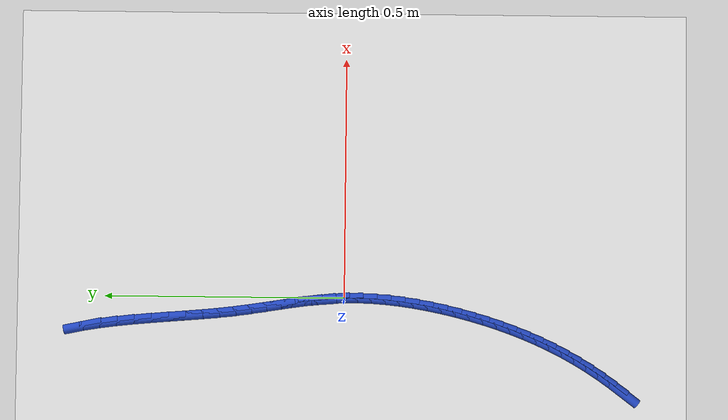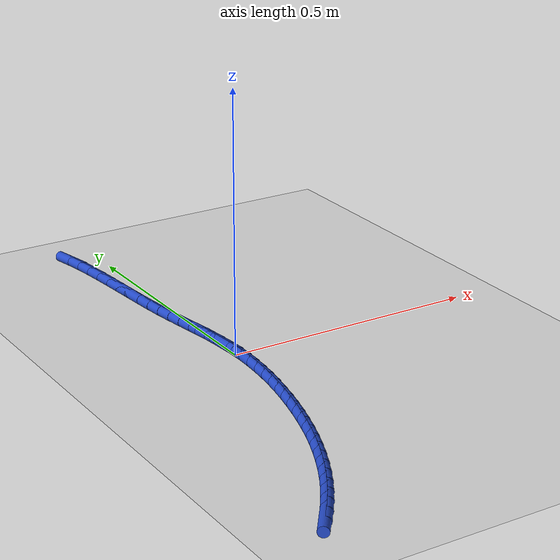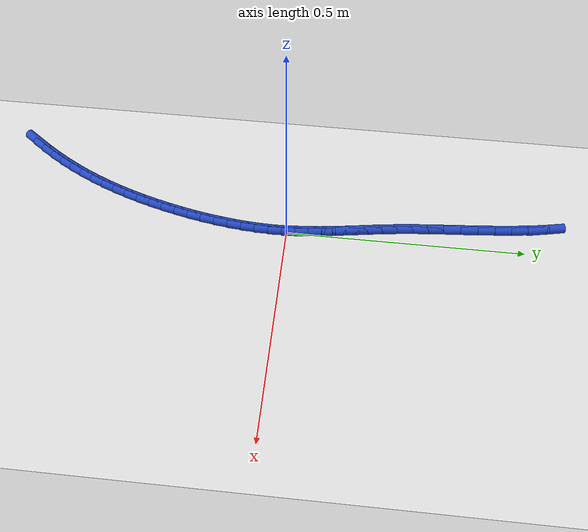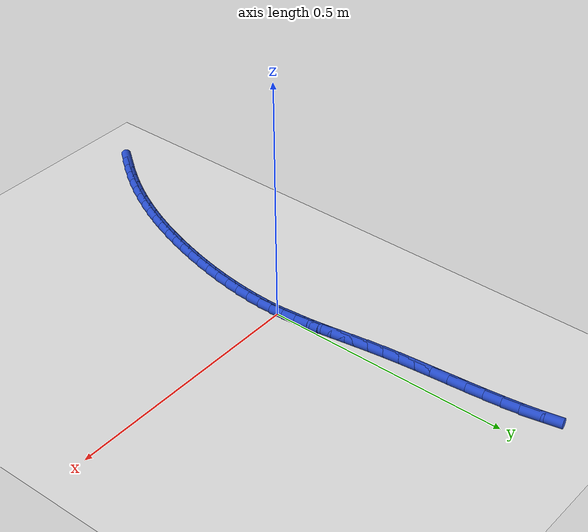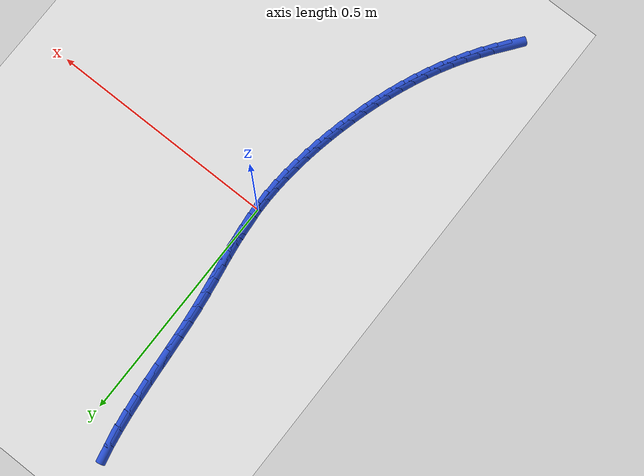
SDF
<sdf version="1.6">
 <world name="default">
  <model name="ground_plane">
   <static>1</static>
   <link name="link">
    <collision name="collision">
     <geometry><plane><normal>0 0 1</normal><size>100 100</size></plane></geometry>
     <surface><friction><ode><mu>100</mu><mu2>50</mu2></ode></friction></surface>
    </collision>
    <visual name="visual">
     <cast_shadows>0</cast_shadows>
     <geometry><plane><normal>0 0 1</normal><size>100 100</size></plane></geometry>
     <material>
      <script><uri>file://media/materials/scripts/gazebo.material</uri><name>Gazebo/WhiteGlow</name></script>
     </material>
    </visual>
   </link>
  </model>
  <model name="line">
   <link name="link_0">
    <pose>-5.204170427930421e-18 9.71445146547012e-17 0.01 0 1.57 -1.516858598603744</pose>
    <collision name="collision">
     <geometry><cylinder><radius>0.01</radius><length>0.08</length></cylinder></geometry>
    </collision>
    <visual name="visual">
     <material>
      <script><name>Gazebo/Blue</name><uri>file://media/materials/scripts/gazebo.material</uri></script>
     </material>
     <geometry><cylinder><radius>0.01</radius><length>0.08</length></cylinder></geometry>
    </visual>
   </link>
   <link name="link_1">
    <pose>-0.0015242391956589154 0.028231829824980622 0.01 0 1.57 -1.4789966597970252</pose>
    <collision name="collision">
     <geometry><cylinder><radius>0.01</radius><length>0.08</length></cylinder></geometry>
    </collision>
    <visual name="visual">
     <material>
      <script><name>Gazebo/Blue</name><uri>file://media/materials/scripts/gazebo.material</uri></script>
     </material>
     <geometry><cylinder><radius>0.01</radius><length>0.08</length></cylinder></geometry>
    </visual>
   </link>
   <link name="link_2">
    <pose>-0.00410380521407094 0.05625280063618436 0.01 0 1.57 -1.449569584046951</pose>
    <collision name="collision">
     <geometry><cylinder><radius>0.01</radius><length>0.08</length></cylinder></geometry>
    </collision>
    <visual name="visual">
     <material>
      <script><name>Gazebo/Blue</name><uri>file://media/materials/scripts/gazebo.material</uri></script>
     </material>
     <geometry><cylinder><radius>0.01</radius><length>0.08</length></cylinder></geometry>
    </visual>
   </link>
   <link name="link_3">
    <pose>-0.007517797307046079 0.08427674721994391 0.01 0 1.57 -1.4291379045538755</pose>
    <collision name="collision">
     <geometry><cylinder><radius>0.01</radius><length>0.08</length></cylinder></geometry>
    </collision>
    <visual name="visual">
     <material>
      <script><name>Gazebo/Blue</name><uri>file://media/materials/scripts/gazebo.material</uri></script>
     </material>
     <geometry><cylinder><radius>0.01</radius><length>0.08</length></cylinder></geometry>
    </visual>
   </link>
   <link name="link_4">
    <pose>-0.011545314726394319 0.1125175043625919 0.01 0 1.57 -1.4178350203846481</pose>
    <collision name="collision">
     <geometry><cylinder><radius>0.01</radius><length>0.08</length></cylinder></geometry>
    </collision>
    <visual name="visual">
     <material>
      <script><name>Gazebo/Blue</name><uri>file://media/materials/scripts/gazebo.material</uri></script>
     </material>
     <geometry><cylinder><radius>0.01</radius><length>0.08</length></cylinder></geometry>
    </visual>
   </link>
   <link name="link_5">
    <pose>-0.01596545672392564 0.14118890685046093 0.01 0 1.57 -1.4154246961774581</pose>
    <collision name="collision">
     <geometry><cylinder><radius>0.01</radius><length>0.08</length></cylinder></geometry>
    </collision>
    <visual name="visual">
     <material>
      <script><name>Gazebo/Blue</name><uri>file://media/materials/scripts/gazebo.material</uri></script>
     </material>
     <geometry><cylinder><radius>0.01</radius><length>0.08</length></cylinder></geometry>
    </visual>
   </link>
   <link name="link_6">
    <pose>-0.02055732255145006 0.17050478946988357 0.01 0 1.57 -1.4213697091263997</pose>
    <collision name="collision">
     <geometry><cylinder><radius>0.01</radius><length>0.08</length></cylinder></geometry>
    </collision>
    <visual name="visual">
     <material>
      <script><name>Gazebo/Blue</name><uri>file://media/materials/scripts/gazebo.material</uri></script>
     </material>
     <geometry><cylinder><radius>0.01</radius><length>0.08</length></cylinder></geometry>
    </visual>
   </link>
   <link name="link_7">
    <pose>-0.02510001146077753 0.20067898700719247 0.01 0 1.57 -1.4348995871312127</pose>
    <collision name="collision">
     <geometry><cylinder><radius>0.01</radius><length>0.08</length></cylinder></geometry>
    </collision>
    <visual name="visual">
     <material>
      <script><name>Gazebo/Blue</name><uri>file://media/materials/scripts/gazebo.material</uri></script>
     </material>
     <geometry><cylinder><radius>0.01</radius><length>0.08</length></cylinder></geometry>
    </visual>
   </link>
   <link name="link_8">
    <pose>-0.02937262270371808 0.2319253342487203 0.01 0 1.57 -1.4548000202109357</pose>
    <collision name="collision">
     <geometry><cylinder><radius>0.01</radius><length>0.08</length></cylinder></geometry>
    </collision>
    <visual name="visual">
     <material>
      <script><name>Gazebo/Blue</name><uri>file://media/materials/scripts/gazebo.material</uri></script>
     </material>
     <geometry><cylinder><radius>0.01</radius><length>0.08</length></cylinder></geometry>
    </visual>
   </link>
   <link name="link_9">
    <pose>-0.03316213859478871 0.2644479599883298 0.01 0 1.57 -1.4735349088852516</pose>
    <collision name="collision">
     <geometry><cylinder><radius>0.01</radius><length>0.08</length></cylinder></geometry>
    </collision>
    <visual name="visual">
     <material>
      <script><name>Gazebo/Blue</name><uri>file://media/materials/scripts/gazebo.material</uri></script>
     </material>
     <geometry><cylinder><radius>0.01</radius><length>0.08</length></cylinder></geometry>
    </visual>
   </link>
   <link name="link_10">
    <pose>-0.036455739651285894 0.29820449970620355 0.01 0 1.57 -1.4846355746560118</pose>
    <collision name="collision">
     <geometry><cylinder><radius>0.01</radius><length>0.08</length></cylinder></geometry>
    </collision>
    <visual name="visual">
     <material>
      <script><name>Gazebo/Blue</name><uri>file://media/materials/scripts/gazebo.material</uri></script>
     </material>
     <geometry><cylinder><radius>0.01</radius><length>0.08</length></cylinder></geometry>
    </visual>
   </link>
   <link name="link_11">
    <pose>-0.03945189641128605 0.332892438808014 0.01 0 1.57 -1.4886325579227337</pose>
    <collision name="collision">
     <geometry><cylinder><radius>0.01</radius><length>0.08</length></cylinder></geometry>
    </collision>
    <visual name="visual">
     <material>
      <script><name>Gazebo/Blue</name><uri>file://media/materials/scripts/gazebo.material</uri></script>
     </material>
     <geometry><cylinder><radius>0.01</radius><length>0.08</length></cylinder></geometry>
    </visual>
   </link>
   <link name="link_12">
    <pose>-0.04235918286147937 0.36819682286484146 0.01 0 1.57 -1.4859864672699152</pose>
    <collision name="collision">
     <geometry><cylinder><radius>0.01</radius><length>0.08</length></cylinder></geometry>
    </collision>
    <visual name="visual">
     <material>
      <script><name>Gazebo/Blue</name><uri>file://media/materials/scripts/gazebo.material</uri></script>
     </material>
     <geometry><cylinder><radius>0.01</radius><length>0.08</length></cylinder></geometry>
    </visual>
   </link>
   <link name="link_13">
    <pose>-0.045386172988555955 0.4038026974477652 0.01 0 1.57 -1.4768049021204428</pose>
    <collision name="collision">
     <geometry><cylinder><radius>0.01</radius><length>0.08</length></cylinder></geometry>
    </collision>
    <visual name="visual">
     <material>
      <script><name>Gazebo/Blue</name><uri>file://media/materials/scripts/gazebo.material</uri></script>
     </material>
     <geometry><cylinder><radius>0.01</radius><length>0.08</length></cylinder></geometry>
    </visual>
   </link>
   <link name="link_14">
    <pose>-0.048741440779205975 0.4393951081278654 0.01 0 1.57 -1.4608703247317854</pose>
    <collision name="collision">
     <geometry><cylinder><radius>0.01</radius><length>0.08</length></cylinder></geometry>
    </collision>
    <visual name="visual">
     <material>
      <script><name>Gazebo/Blue</name><uri>file://media/materials/scripts/gazebo.material</uri></script>
     </material>
     <geometry><cylinder><radius>0.01</radius><length>0.08</length></cylinder></geometry>
    </visual>
   </link>
   <link name="link_15">
    <pose>-0.05263356022011952 0.47465910047622173 0.01 0 1.57 -1.4376357395155566</pose>
    <collision name="collision">
     <geometry><cylinder><radius>0.01</radius><length>0.08</length></cylinder></geometry>
    </collision>
    <visual name="visual">
     <material>
      <script><name>Gazebo/Blue</name><uri>file://media/materials/scripts/gazebo.material</uri></script>
     </material>
     <geometry><cylinder><radius>0.01</radius><length>0.08</length></cylinder></geometry>
    </visual>
   </link>
   <link name="link_16">
    <pose>-0.05727110529798679 0.5092797200639141 0.01 0 1.57 -1.406192172854888</pose>
    <collision name="collision">
     <geometry><cylinder><radius>0.01</radius><length>0.08</length></cylinder></geometry>
    </collision>
    <visual name="visual">
     <material>
      <script><name>Gazebo/Blue</name><uri>file://media/materials/scripts/gazebo.material</uri></script>
     </material>
     <geometry><cylinder><radius>0.01</radius><length>0.08</length></cylinder></geometry>
    </visual>
   </link>
   <link name="link_17">
    <pose>-0.0628626499994979 0.5429420124620222 0.01 0 1.57 -1.3652113379434214</pose>
    <collision name="collision">
     <geometry><cylinder><radius>0.01</radius><length>0.08</length></cylinder></geometry>
    </collision>
    <visual name="visual">
     <material>
      <script><name>Gazebo/Blue</name><uri>file://media/materials/scripts/gazebo.material</uri></script>
     </material>
     <geometry><cylinder><radius>0.01</radius><length>0.08</length></cylinder></geometry>
    </visual>
   </link>
   <link name="link_229">
    <pose>-0.1888488784481145 -0.5783563280295949 0.01 0 1.57 0.9235091111196257</pose>
    <collision name="collision">
     <geometry><cylinder><radius>0.01</radius><length>0.08</length></cylinder></geometry>
    </collision>
    <visual name="visual">
     <material>
      <script><name>Gazebo/Blue</name><uri>file://media/materials/scripts/gazebo.material</uri></script>
     </material>
     <geometry><cylinder><radius>0.01</radius><length>0.08</length></cylinder></geometry>
    </visual>
   </link>
   <link name="link_230">
    <pose>-0.17103437126203377 -0.5547900661488558 0.01 0 1.57 0.9597232727165315</pose>
    <collision name="collision">
     <geometry><cylinder><radius>0.01</radius><length>0.08</length></cylinder></geometry>
    </collision>
    <visual name="visual">
     <material>
      <script><name>Gazebo/Blue</name><uri>file://media/materials/scripts/gazebo.material</uri></script>
     </material>
     <geometry><cylinder><radius>0.01</radius><length>0.08</length></cylinder></geometry>
    </visual>
   </link>
   <link name="link_231">
    <pose>-0.15411868481432034 -0.5306426443719306 0.01 0 1.57 0.9963564128268337</pose>
    <collision name="collision">
     <geometry><cylinder><radius>0.01</radius><length>0.08</length></cylinder></geometry>
    </collision>
    <visual name="visual">
     <material>
      <script><name>Gazebo/Blue</name><uri>file://media/materials/scripts/gazebo.material</uri></script>
     </material>
     <geometry><cylinder><radius>0.01</radius><length>0.08</length></cylinder></geometry>
    </visual>
   </link>
   <link name="link_232">
    <pose>-0.13812860872027938 -0.5059380260713569 0.01 0 1.57 1.0334425679791577</pose>
    <collision name="collision">
     <geometry><cylinder><radius>0.01</radius><length>0.08</length></cylinder></geometry>
    </collision>
    <visual name="visual">
     <material>
      <script><name>Gazebo/Blue</name><uri>file://media/materials/scripts/gazebo.material</uri></script>
     </material>
     <geometry><cylinder><radius>0.01</radius><length>0.08</length></cylinder></geometry>
    </visual>
   </link>
   <link name="link_233">
    <pose>-0.12309093188712159 -0.4807001746260571 0.01 0 1.57 1.0706723302329113</pose>
    <collision name="collision">
     <geometry><cylinder><radius>0.01</radius><length>0.08</length></cylinder></geometry>
    </collision>
    <visual name="visual">
     <material>
      <script><name>Gazebo/Blue</name><uri>file://media/materials/scripts/gazebo.material</uri></script>
     </material>
     <geometry><cylinder><radius>0.01</radius><length>0.08</length></cylinder></geometry>
    </visual>
   </link>
   <link name="link_234">
    <pose>-0.10902112560329316 -0.4549531554929469 0.01 0 1.57 1.1068259838174161</pose>
    <collision name="collision">
     <geometry><cylinder><radius>0.01</radius><length>0.08</length></cylinder></geometry>
    </collision>
    <visual name="visual">
     <material>
      <script><name>Gazebo/Blue</name><uri>file://media/materials/scripts/gazebo.material</uri></script>
     </material>
     <geometry><cylinder><radius>0.01</radius><length>0.08</length></cylinder></geometry>
    </visual>
   </link>
   <link name="link_235">
    <pose>-0.09589466124983007 -0.42872139490361644 0.01 0 1.57 1.1415712808947418</pose>
    <collision name="collision">
     <geometry><cylinder><radius>0.01</radius><length>0.08</length></cylinder></geometry>
    </collision>
    <visual name="visual">
     <material>
      <script><name>Gazebo/Blue</name><uri>file://media/materials/scripts/gazebo.material</uri></script>
     </material>
     <geometry><cylinder><radius>0.01</radius><length>0.08</length></cylinder></geometry>
    </visual>
   </link>
   <link name="link_236">
    <pose>-0.08367817759727696 -0.40202939875439475 0.01 0 1.57 1.1748547516649699</pose>
    <collision name="collision">
     <geometry><cylinder><radius>0.01</radius><length>0.08</length></cylinder></geometry>
    </collision>
    <visual name="visual">
     <material>
      <script><name>Gazebo/Blue</name><uri>file://media/materials/scripts/gazebo.material</uri></script>
     </material>
     <geometry><cylinder><radius>0.01</radius><length>0.08</length></cylinder></geometry>
    </visual>
   </link>
   <link name="link_237">
    <pose>-0.07233831341617857 -0.37490167294161075 0.01 0 1.57 1.2066405173352788</pose>
    <collision name="collision">
     <geometry><cylinder><radius>0.01</radius><length>0.08</length></cylinder></geometry>
    </collision>
    <visual name="visual">
     <material>
      <script><name>Gazebo/Blue</name><uri>file://media/materials/scripts/gazebo.material</uri></script>
     </material>
     <geometry><cylinder><radius>0.01</radius><length>0.08</length></cylinder></geometry>
    </visual>
   </link>
   <link name="link_238">
    <pose>-0.06184170747707948 -0.3473627233615934 0.01 0 1.57 1.2369084026665997</pose>
    <collision name="collision">
     <geometry><cylinder><radius>0.01</radius><length>0.08</length></cylinder></geometry>
    </collision>
    <visual name="visual">
     <material>
      <script><name>Gazebo/Blue</name><uri>file://media/materials/scripts/gazebo.material</uri></script>
     </material>
     <geometry><cylinder><radius>0.01</radius><length>0.08</length></cylinder></geometry>
    </visual>
   </link>
   <link name="link_239">
    <pose>-0.05215499855052449 -0.31943705591067195 0.01 0 1.57 1.2656518675874218</pose>
    <collision name="collision">
     <geometry><cylinder><radius>0.01</radius><length>0.08</length></cylinder></geometry>
    </collision>
    <visual name="visual">
     <material>
      <script><name>Gazebo/Blue</name><uri>file://media/materials/scripts/gazebo.material</uri></script>
     </material>
     <geometry><cylinder><radius>0.01</radius><length>0.08</length></cylinder></geometry>
    </visual>
   </link>
   <link name="link_240">
    <pose>-0.04324482540705845 -0.2911491764851759 0.01 0 1.57 1.2928758828734386</pose>
    <collision name="collision">
     <geometry><cylinder><radius>0.01</radius><length>0.08</length></cylinder></geometry>
    </collision>
    <visual name="visual">
     <material>
      <script><name>Gazebo/Blue</name><uri>file://media/materials/scripts/gazebo.material</uri></script>
     </material>
     <geometry><cylinder><radius>0.01</radius><length>0.08</length></cylinder></geometry>
    </visual>
   </link>
   <link name="link_241">
    <pose>-0.035077826817225585 -0.2625235909814328 0.01 0 1.57 1.3186604625228804</pose>
    <collision name="collision">
     <geometry><cylinder><radius>0.01</radius><length>0.08</length></cylinder></geometry>
    </collision>
    <visual name="visual">
     <material>
      <script><name>Gazebo/Blue</name><uri>file://media/materials/scripts/gazebo.material</uri></script>
     </material>
     <geometry><cylinder><radius>0.01</radius><length>0.08</length></cylinder></geometry>
    </visual>
   </link>
   <link name="link_242">
    <pose>-0.027623034370165524 -0.23358623364757608 0.01 0 1.57 1.3444335341075928</pose>
    <collision name="collision">
     <geometry><cylinder><radius>0.01</radius><length>0.08</length></cylinder></geometry>
    </collision>
    <visual name="visual">
     <material>
      <script><name>Gazebo/Blue</name><uri>file://media/materials/scripts/gazebo.material</uri></script>
     </material>
     <geometry><cylinder><radius>0.01</radius><length>0.08</length></cylinder></geometry>
    </visual>
   </link>
   <link name="link_243">
    <pose>-0.02089951986504226 -0.20439290937233032 0.01 0 1.57 1.3716752655469175</pose>
    <collision name="collision">
     <geometry><cylinder><radius>0.01</radius><length>0.08</length></cylinder></geometry>
    </collision>
    <visual name="visual">
     <material>
      <script><name>Gazebo/Blue</name><uri>file://media/materials/scripts/gazebo.material</uri></script>
     </material>
     <geometry><cylinder><radius>0.01</radius><length>0.08</length></cylinder></geometry>
    </visual>
   </link>
   <link name="link_244">
    <pose>-0.014973768415082774 -0.17502772560476035 0.01 0 1.57 1.4006634041820436</pose>
    <collision name="collision">
     <geometry><cylinder><radius>0.01</radius><length>0.08</length></cylinder></geometry>
    </collision>
    <visual name="visual">
     <material>
      <script><name>Gazebo/Blue</name><uri>file://media/materials/scripts/gazebo.material</uri></script>
     </material>
     <geometry><cylinder><radius>0.01</radius><length>0.08</length></cylinder></geometry>
    </visual>
   </link>
   <link name="link_245">
    <pose>-0.009914132093969828 -0.14557590424378514 0.01 0 1.57 1.4316432462069428</pose>
    <collision name="collision">
     <geometry><cylinder><radius>0.01</radius><length>0.08</length></cylinder></geometry>
    </collision>
    <visual name="visual">
     <material>
      <script><name>Gazebo/Blue</name><uri>file://media/materials/scripts/gazebo.material</uri></script>
     </material>
     <geometry><cylinder><radius>0.01</radius><length>0.08</length></cylinder></geometry>
    </visual>
   </link>
   <link name="link_246">
    <pose>-0.00578896297538619 -0.11612266718832391 0.01 0 1.57 1.464881247741938</pose>
    <collision name="collision">
     <geometry><cylinder><radius>0.01</radius><length>0.08</length></cylinder></geometry>
    </collision>
    <visual name="visual">
     <material>
      <script><name>Gazebo/Blue</name><uri>file://media/materials/scripts/gazebo.material</uri></script>
     </material>
     <geometry><cylinder><radius>0.01</radius><length>0.08</length></cylinder></geometry>
    </visual>
   </link>
   <link name="link_247">
    <pose>-0.002666613133014628 -0.08675323633729569 0.01 0 1.57 1.5006666534183664</pose>
    <collision name="collision">
     <geometry><cylinder><radius>0.01</radius><length>0.08</length></cylinder></geometry>
    </collision>
    <visual name="visual">
     <material>
      <script><name>Gazebo/Blue</name><uri>file://media/materials/scripts/gazebo.material</uri></script>
     </material>
     <geometry><cylinder><radius>0.01</radius><length>0.08</length></cylinder></geometry>
    </visual>
   </link>
   <link name="link_248">
    <pose>-0.0006154346405378994 -0.05755283358961956 0.01 0 1.57 1.5393118727245498</pose>
    <collision name="collision">
     <geometry><cylinder><radius>0.01</radius><length>0.08</length></cylinder></geometry>
    </collision>
    <visual name="visual">
     <material>
      <script><name>Gazebo/Blue</name><uri>file://media/materials/scripts/gazebo.material</uri></script>
     </material>
     <geometry><cylinder><radius>0.01</radius><length>0.08</length></cylinder></geometry>
    </visual>
   </link>
   <link name="link_249">
    <pose>0.00029622042836122565 -0.02860668084421464 0.01 0 1.57 -1.5604417581097836</pose>
    <collision name="collision">
     <geometry><cylinder><radius>0.01</radius><length>0.08</length></cylinder></geometry>
    </collision>
    <visual name="visual">
     <material>
      <script><name>Gazebo/Blue</name><uri>file://media/materials/scripts/gazebo.material</uri></script>
     </material>
     <geometry><cylinder><radius>0.01</radius><length>0.08</length></cylinder></geometry>
    </visual>
   </link>
   <link name="link_250">
    <pose>-1.474514954580286e-17 0.0 0.01 0 1.57 -1.5150579131885287</pose>
    <collision name="collision">
     <geometry><cylinder><radius>0.01</radius><length>0.08</length></cylinder></geometry>
    </collision>
    <visual name="visual">
     <material>
      <script><name>Gazebo/Blue</name><uri>file://media/materials/scripts/gazebo.material</uri></script>
     </material>
     <geometry><cylinder><radius>0.01</radius><length>0.08</length></cylinder></geometry>
    </visual>
   </link>
   <link name="link_251">
    <pose>-0.0015724479993043834 0.02818198704410526 0.01 0 1.57 -1.465770061438249</pose>
    <collision name="collision">
     <geometry><cylinder><radius>0.01</radius><length>0.08</length></cylinder></geometry>
    </collision>
    <visual name="visual">
     <material>
      <script><name>Gazebo/Blue</name><uri>file://media/materials/scripts/gazebo.material</uri></script>
     </material>
     <geometry><cylinder><radius>0.01</radius><length>0.08</length></cylinder></geometry>
    </visual>
   </link>
   <link name="link_252">
    <pose>-0.0044894756432346476 0.055854058389182025 0.01 0 1.57 -1.4905900777687768</pose>
    <collision name="collision">
     <geometry><cylinder><radius>0.01</radius><length>0.08</length></cylinder></geometry>
    </collision>
    <visual name="visual">
     <material>
      <script><name>Gazebo/Blue</name><uri>file://media/materials/scripts/gazebo.material</uri></script>
     </material>
     <geometry><cylinder><radius>0.01</radius><length>0.08</length></cylinder></geometry>
    </visual>
   </link>
  </model>
 </world>
</sdf>
